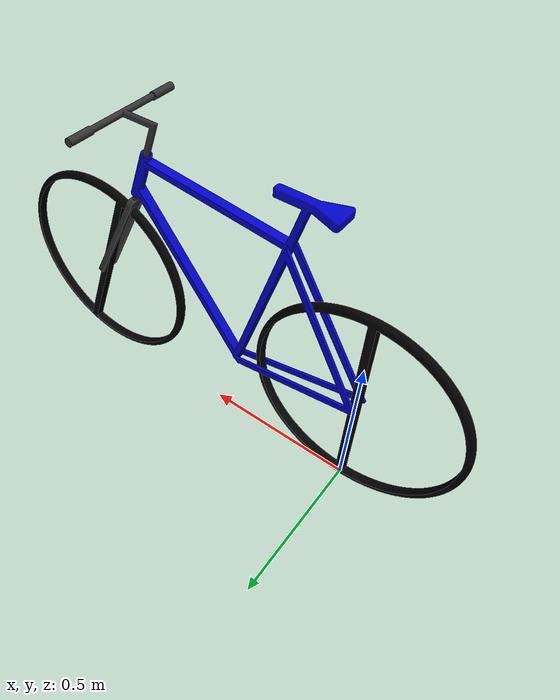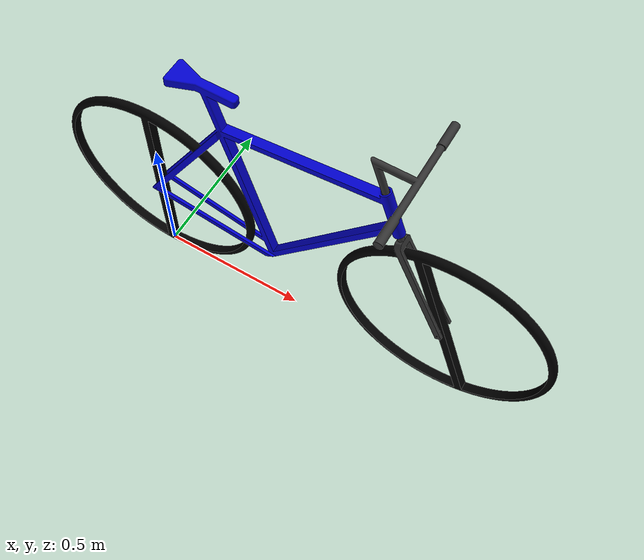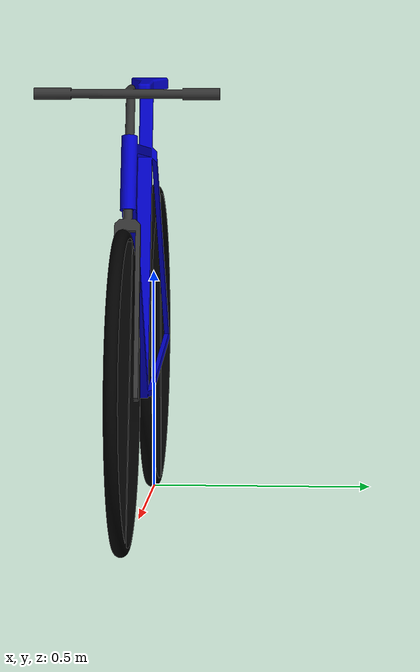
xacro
<?xml version="1.0"?>

<robot name="bicycle" xmlns:xacro="http://www.ros.org/wiki/xacro">
<!-- CAD URL: https://cad.onshape.com/documents/e5ef9716c5b71004058bf9ce/w/ae8819e9743ff8e3d490a09a/e/5a0b072f3be44112fc069069 -->

   <!-- Import Rviz colors -->
  <xacro:include filename="$(find bicycle_description)/urdf/colors.xacro" />

  <!-- Import all Gazebo-customization elements, including Gazebo colors -->
  <xacro:include filename="$(find bicycle_description)/urdf/baseline.gazebo" />

  <!-- Constants for robot dimensions -->
  <xacro:property name="PI" value="3.1415926535897931"/>
  <xacro:property name="DEG2RAD" value="0.0174533"/>

  <!-- Basic Geometric Parameters -->
  <xacro:property name="wheel_radius" value="${0.35}"/>
  <xacro:property name="wheel_base" value="${1.0}"/>
  <xacro:property name="trail" value="${0.08}"/>
  <xacro:property name="steer_axis_tilt" value="${20*DEG2RAD}"/>

  <!-- Derived Values. d1-3 from alternative parameterization -->
  <xacro:property name="wheel_diameter" value="${wheel_radius*2}"/>
  <xacro:property name="d1" value="${cos(steer_axis_tilt)*(trail+wheel_base-wheel_radius*tan(steer_axis_tilt))}"/>
  <xacro:property name="d3" value="${-cos(steer_axis_tilt)*(trail-wheel_radius*tan(steer_axis_tilt))}"/>
  <xacro:property name="d2" value="${(wheel_radius+d1*sin(steer_axis_tilt)-wheel_radius+d3*sin(steer_axis_tilt))/cos(steer_axis_tilt)}"/>

  <!-- ______Inertia Parameters______ -->

  <!-- Front/Back Wheel (w) -->
  <!-- Wheel mesh frame has origin at center of wheel. Frame orientation is such
  that wheel lies in xz plane, with y axis perpindicular (i.e. along rotation axis)-->
  <xacro:property name="m_w" value="${1.5}"/>

  <xacro:property name="I_wxx" value="${0.07}"/>
  <xacro:property name="I_wyy" value="${0.14}"/>
  <xacro:property name="I_wzz" value="${0.07}"/>
  <xacro:property name="I_wxy" value="${0.0}"/>
  <xacro:property name="I_wxz" value="${0.0}"/>
  <xacro:property name="I_wyz" value="${0.0}"/>

  <xacro:property name="x_w" value="${0}"/>
  <xacro:property name="y_w" value="${0}"/>
  <xacro:property name="z_w" value="${0}"/>

  <!-- Main Frame (b) -->
  <xacro:property name="m_b" value="${12}"/>

  <xacro:property name="I_bxx" value="${0.476}"/>
  <xacro:property name="I_byy" value="${1.033}"/>
  <xacro:property name="I_bzz" value="${0.527}"/>
  <xacro:property name="I_bxy" value="${0.0}"/>
  <xacro:property name="I_bxz" value="${-0.274}"/>
  <xacro:property name="I_byz" value="${0.0}"/>

  <xacro:property name="x_b" value="${0.439}"/>
  <xacro:property name="y_b" value="${0}"/>
  <xacro:property name="z_b" value="${0.579}"/>

  <!-- Steering and handlebars (h) -->
  <xacro:property name="m_h" value="${2}"/>

  <xacro:property name="I_hxx" value="${0.08}"/>
  <xacro:property name="I_hyy" value="${0.07}"/>
  <xacro:property name="I_hzz" value="${0.02}"/>
  <xacro:property name="I_hxy" value="${0}"/>
  <xacro:property name="I_hxz" value="${0.02}"/>
  <xacro:property name="I_hyz" value="${0}"/>

  <xacro:property name="x_h" value="${0.866}"/>
  <xacro:property name="y_h" value="${0}"/>
  <xacro:property name="z_h" value="${0.676}"/>

  <!--_________BACK WHEEL LINK____________-->

   <link name="back_wheel">
    <visual>
      <origin rpy="0 0 0" xyz="0 0 ${wheel_radius}"/>
      <geometry>
          <mesh filename="package://bicycle_description/meshes/baseline_model/wheel_medium.stl" />
      </geometry>
      <material name="black"/>
    </visual>

    <collision>
      <origin rpy="0 0 0" xyz="0 0 ${wheel_radius}"/>
      <geometry>
          <mesh filename="package://bicycle_description/meshes/baseline_model/wheel_medium.stl" />
      </geometry>
    </collision>

    <inertial>
      <origin rpy="0 0 0" xyz="${x_w} ${y_w} ${z_w + wheel_radius}"/>
      <mass value="${m_w}"/>
      <inertia ixx="${I_wxx}" ixy="${I_wxy}" ixz="${I_wxy}"
               iyy="${I_wyy}" iyz="${I_wyz}"
               izz="${I_wzz}" />
    </inertial>
  </link>

  <!--_________BACK FRAME LINK___________-->

   <link name="back_frame">
    <visual>
      <origin rpy="0 0 0" xyz="0 0 0"/>
      <geometry>
          <mesh filename="package://bicycle_description/meshes/baseline_model/back_frame.stl" />
      </geometry>
      <material name="blue"/>
    </visual>

    <collision>
      <origin rpy="0 0 0" xyz="0 0 0"/>
      <geometry>
          <mesh filename="package://bicycle_description/meshes/baseline_model/back_frame.stl" />
      </geometry>
    </collision>

    <inertial>
      <origin rpy="0 0 0" xyz="${x_b} ${y_b} ${z_b - wheel_radius}"/>
      <mass value="${m_b}"/>
      <inertia ixx="${I_bxx}" ixy="${I_bxy}" ixz="${I_bxy}"
               iyy="${I_byy}" iyz="${I_byz}"
               izz="${I_bzz}" />
    </inertial>
  </link>

  <!--_________FRONT FRAME LINK__________-->

   <link name="front_frame">
    <visual>
      <origin rpy="0 0 0" xyz="0 0 0"/>
      <geometry>
          <mesh filename="package://bicycle_description/meshes/baseline_model/front_frame.stl" />
      </geometry>
      <material name="gray"/>
    </visual>

    <collision>
      <origin rpy="0 0 0" xyz="0 0 0"/>
      <geometry>
          <mesh filename="package://bicycle_description/meshes/baseline_model/front_frame.stl" />
      </geometry>
    </collision>

    <inertial>
      <origin rpy="0 ${steer_axis_tilt} 0" xyz="${x_h - d1*cos(steer_axis_tilt)} ${y_h} ${z_h - wheel_radius - d1*sin(steer_axis_tilt)}"/>
      <mass value="${m_h}"/>
      <inertia ixx="${I_hxx}" ixy="${I_hxy}" ixz="${I_hxy}"
               iyy="${I_hyy}" iyz="${I_hyz}"
               izz="${I_hzz}" />
    </inertial>
  </link>

  <!--_________FRONT WHEEL LINK___________-->

   <link name="front_wheel">
    <visual>
      <origin rpy="0 0 0" xyz="0 0 0"/>
      <geometry>
          <mesh filename="package://bicycle_description/meshes/baseline_model/wheel_medium.stl" />
      </geometry>
      <material name="black"/>
    </visual>

    <collision>
      <origin rpy="0 0 0" xyz="0 0 0"/>
      <geometry>
          <mesh filename="package://bicycle_description/meshes/baseline_model/wheel_medium.stl" />
      </geometry>
    </collision>

    <inertial>
      <origin rpy="0 0 0" xyz="${x_w} ${y_w} ${z_w}"/>
      <mass value="${m_w}"/>
      <inertia ixx="${I_wxx}" ixy="${I_wxy}" ixz="${I_wxy}"
               iyy="${I_wyy}" iyz="${I_wyz}"
               izz="${I_wzz}" />
    </inertial>
  </link>

  <!--______________JOINTS_______________-->

  <!-- Connects the back_frame to the back_wheel -->
  <joint name="back_wheel_joint" type="continuous">
    <parent link="back_wheel"/>
    <child link="back_frame"/>
    <origin xyz="0 0 ${wheel_radius}" rpy="0 0 0"/>
    <axis xyz="0 1 0"/>
    <dynamic damping="0" friction="0.002" />
  </joint>

  <!-- Connects the front_frame to the back_frame -->
  <joint name="steering_joint" type="continuous">
    <parent link="back_frame"/>
    <child link="front_frame"/>
    <origin rpy="0 ${-steer_axis_tilt} 0" xyz="${d1*cos(steer_axis_tilt)} 0 ${d1*sin(steer_axis_tilt)}" />
    <axis xyz="0 0 1"/>
    <dynamic damping="0" friction="0.002" />
  </joint>

  <!-- Connects the front_wheel to front_frame-->
  <joint name="front_wheel_joint" type="continuous">
    <parent link="front_frame"/>
    <child link="front_wheel"/>
    <origin xyz="${d3} 0 ${-d2}" rpy="0 0 0"/>
    <axis xyz="0 1 0"/>
    <dynamic damping="0" friction="0.002" />
  </joint>

  <!--__________DUMMY LINK_______________-->
  <link name="dummy_link">
  </link>

  <joint name="dummy" type="fixed">
    <parent link="dummy_link"/>
    <child link="back_wheel"/>
    <origin xyz="0 0 0" rpy="0 0 0"/>
  </joint>

</robot>

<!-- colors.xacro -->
<robot>

    <material name="wood">
        <color rgba="0.8 0.7 0 1"/>
    </material>

    <material name="plastic">
        <color rgba="0.5 0.5 0.5 0.7"/>
    </material>

    <material name="metal">
        <color rgba="0.8 0.8 0.8 1"/>
    </material>

    <material name="blue">
        <color rgba="0 0 0.8 1"/>
    </material>

    <material name="black">
        <color rgba="0 0 0 1"/>
    </material>

    <material name="white">
        <color rgba="1 1 1 1"/>
    </material>

    <material name="green">
        <color rgba="0.0 0.8 0.0 1.0"/>
    </material>

    <material name="gray">
        <color rgba="0.2 0.2 0.2 1.0"/>
    </material>

    <material name="orange">
        <color rgba="${255/255} ${108/255} ${10/255} 1.0"/>
    </material>

    <material name="brown">
        <color rgba="${222/255} ${207/255} ${195/255} 1.0"/>
    </material>

    <material name="red">
        <color rgba="0.8 0.0 0.0 1.0"/>
    </material>

    <material name="purple">
        <color rgba="${167/255} ${149/255} ${210/255} 1.0"/>
    </material>

</robot>
